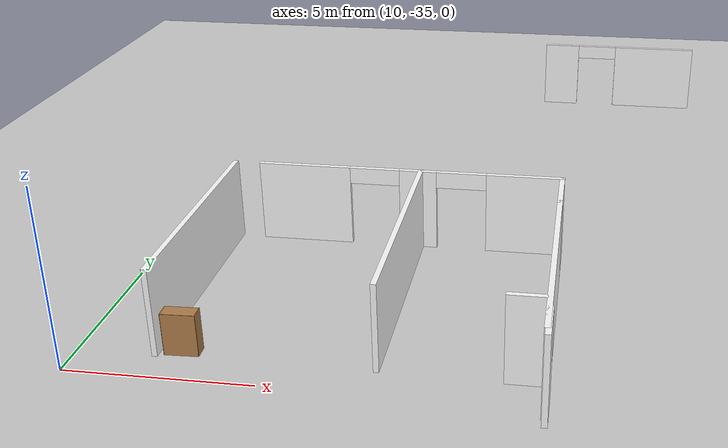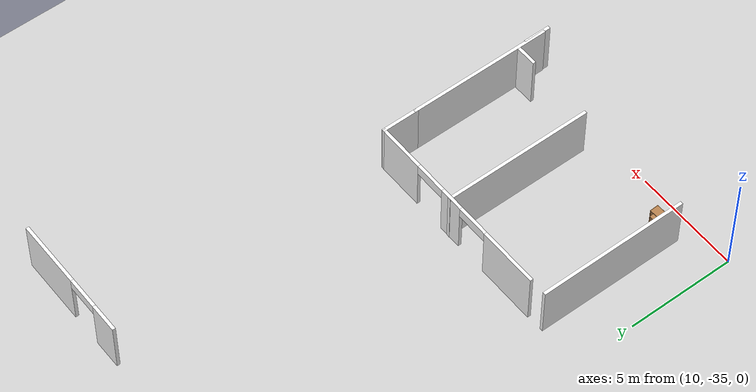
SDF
<sdf version="1.6">
 <world name="default">
  <model name="ground_plane">
   <static>1</static>
   <link name="link">
    <collision name="collision">
     <geometry><plane><normal>0 0 1</normal><size>100 100</size></plane></geometry>
     <surface><friction><ode><mu>100</mu><mu2>50</mu2></ode></friction></surface>
    </collision>
    <visual name="visual">
     <cast_shadows>0</cast_shadows>
     <geometry><plane><normal>0 0 1</normal><size>100 100</size></plane></geometry>
     <material>
      <script>
       <uri>model://office_env/materials/scripts</uri>
       <uri>model://office_env/materials/textures</uri>
       <name>wall</name>
      </script>
     </material>
    </visual>
   </link>
  </model>
  <model name="aule_N">
   <pose>0.1887 -1.4289 0 0 -0 0</pose>
   <link name="Wall_202">
    <pose>17.2908 -25.7162 0 0 -0 0</pose>
    <visual name="Wall_202_Visual_0">
     <pose>-3.22144 0 1.25 0 -0 0</pose>
     <geometry><box><size>2.80712 0.15 2.5</size></box></geometry>
     <material>
      <script>
       <uri>model://office_env/materials/scripts</uri>
       <uri>model://office_env/materials/textures</uri>
       <name>wall</name>
      </script>
      <ambient>1 1 1 1</ambient>
     </material>
    </visual>
    <collision name="Wall_202_Collision_0">
     <geometry><box><size>2.80712 0.15 2.5</size></box></geometry>
     <pose>-3.22144 0 1.25 0 -0 0</pose>
    </collision>
    <visual name="Wall_202_Visual_1">
     <pose>0.246922 0 1.25 0 -0 0</pose>
     <geometry><box><size>1.12961 0.15 2.5</size></box></geometry>
     <material>
      <script>
       <uri>model://office_env/materials/scripts</uri>
       <uri>model://office_env/materials/textures</uri>
       <name>wall</name>
      </script>
      <ambient>1 1 1 1</ambient>
     </material>
    </visual>
    <collision name="Wall_202_Collision_1">
     <geometry><box><size>1.12961 0.15 2.5</size></box></geometry>
     <pose>0.246922 0 1.25 0 -0 0</pose>
    </collision>
    <visual name="Wall_202_Visual_2">
     <pose>3.46836 0 1.25 0 -0 0</pose>
     <geometry><box><size>2.31327 0.15 2.5</size></box></geometry>
     <material>
      <script>
       <uri>model://office_env/materials/scripts</uri>
       <uri>model://office_env/materials/textures</uri>
       <name>wall</name>
      </script>
      <ambient>1 1 1 1</ambient>
     </material>
    </visual>
    <collision name="Wall_202_Collision_2">
     <geometry><box><size>2.31327 0.15 2.5</size></box></geometry>
     <pose>3.46836 0 1.25 0 -0 0</pose>
    </collision>
    <visual name="Wall_202_Visual_3">
     <pose>-1.06788 0 2.25 0 -0 0</pose>
     <geometry><box><size>1.5 0.15 0.5</size></box></geometry>
     <material>
      <script>
       <uri>model://office_env/materials/scripts</uri>
       <uri>model://office_env/materials/textures</uri>
       <name>wall</name>
      </script>
      <ambient>1 1 1 1</ambient>
     </material>
    </visual>
    <collision name="Wall_202_Collision_3">
     <geometry><box><size>1.5 0.15 0.5</size></box></geometry>
     <pose>-1.06788 0 2.25 0 -0 0</pose>
    </collision>
    <visual name="Wall_202_Visual_4">
     <pose>1.56173 0 2.25 0 -0 0</pose>
     <geometry><box><size>1.5 0.15 0.5</size></box></geometry>
     <material>
      <script>
       <uri>model://office_env/materials/scripts</uri>
       <uri>model://office_env/materials/textures</uri>
       <name>wall</name>
      </script>
      <ambient>1 1 1 1</ambient>
     </material>
    </visual>
    <collision name="Wall_202_Collision_4">
     <geometry><box><size>1.5 0.15 0.5</size></box></geometry>
     <pose>1.56173 0 2.25 0 -0 0</pose>
    </collision>
   </link>
   <link name="Wall_203">
    <collision name="Wall_203_Collision">
     <geometry><box><size>1.75 0.15 2.5</size></box></geometry>
     <pose>0 0 1.25 0 -0 0</pose>
    </collision>
    <visual name="Wall_203_Visual">
     <pose>0 0 1.25 0 -0 0</pose>
     <geometry><box><size>1.75 0.15 2.5</size></box></geometry>
     <material>
      <script>
       <uri>model://office_env/materials/scripts</uri>
       <uri>model://office_env/materials/textures</uri>
       <name>wall</name>
      </script>
      <ambient>1 1 1 1</ambient>
     </material>
    </visual>
    <pose>21.8408 -26.5162 0 0 0 -1.5708</pose>
   </link>
   <link name="Wall_209">
    <collision name="Wall_209_Collision">
     <geometry><box><size>6.75 0.15 2.5</size></box></geometry>
     <pose>0 0 1.25 0 -0 0</pose>
    </collision>
    <visual name="Wall_209_Visual">
     <pose>0 0 1.25 0 -0 0</pose>
     <geometry><box><size>6.75 0.15 2.5</size></box></geometry>
     <material>
      <script>
       <uri>model://office_env/materials/scripts</uri>
       <uri>model://office_env/materials/textures</uri>
       <name>wall</name>
      </script>
      <ambient>1 1 1 1</ambient>
     </material>
    </visual>
    <pose>21.8408 -30.6162 0 0 0 -1.5708</pose>
   </link>
   <link name="Wall_213">
    <collision name="Wall_213_Collision">
     <geometry><box><size>7 0.15 2.5</size></box></geometry>
     <pose>0 0 1.25 0 -0 0</pose>
    </collision>
    <visual name="Wall_213_Visual">
     <pose>0 0 1.25 0 -0 0</pose>
     <geometry><box><size>7 0.15 2.5</size></box></geometry>
     <material>
      <script>
       <uri>model://office_env/materials/scripts</uri>
       <uri>model://office_env/materials/textures</uri>
       <name>wall</name>
      </script>
      <ambient>1 1 1 1</ambient>
     </material>
    </visual>
    <pose>17.6159 -29.1253 0 0 0 -1.5708</pose>
   </link>
   <link name="Wall_217">
    <collision name="Wall_217_Collision">
     <geometry><box><size>7 0.15 2.5</size></box></geometry>
     <pose>0 0 1.25 0 -0 0</pose>
    </collision>
    <visual name="Wall_217_Visual">
     <pose>0 0 1.25 0 -0 0</pose>
     <geometry><box><size>7 0.15 2.5</size></box></geometry>
     <material>
      <script>
       <uri>model://office_env/materials/scripts</uri>
       <uri>model://office_env/materials/textures</uri>
       <name>wall</name>
      </script>
      <ambient>1 1 1 1</ambient>
     </material>
    </visual>
    <pose>11.8942 -29.1817 0 0 0 -1.5708</pose>
   </link>
   <link name="Wall_234">
    <collision name="Wall_234_Collision">
     <geometry><box><size>1.25 0.15 2.5</size></box></geometry>
     <pose>0 0 1.25 0 -0 0</pose>
    </collision>
    <visual name="Wall_234_Visual">
     <pose>0 0 1.25 0 -0 0</pose>
     <geometry><box><size>1.25 0.15 2.5</size></box></geometry>
     <material>
      <script>
       <uri>model://office_env/materials/scripts</uri>
       <uri>model://office_env/materials/textures</uri>
       <name>wall</name>
      </script>
      <ambient>1 1 1 1</ambient>
     </material>
    </visual>
    <pose>21.8703 -33.6506 0 0 -0 1.5708</pose>
   </link>
   <link name="Wall_236">
    <collision name="Wall_236_Collision">
     <geometry><box><size>1 0.15 2.5</size></box></geometry>
     <pose>0 0 1.25 0 -0 0</pose>
    </collision>
    <visual name="Wall_236_Visual">
     <pose>0 0 1.25 0 -0 0</pose>
     <geometry><box><size>1 0.15 2.5</size></box></geometry>
     <material>
      <script>
       <uri>model://office_env/materials/scripts</uri>
       <uri>model://office_env/materials/textures</uri>
       <name>wall</name>
      </script>
      <ambient>1 1 1 1</ambient>
     </material>
    </visual>
    <pose>21.2953 -32.6045 0 0 -0 0</pose>
   </link>
   <link name="Wall_81">
    <pose>23.6204 -11.8349 0 0 -0 3.13358</pose>
    <visual name="Wall_81_Visual_0">
     <pose>-1.42133 0 1.25 0 -0 0</pose>
     <geometry><box><size>3.111 0.15 2.5</size></box></geometry>
     <material>
      <script>
       <uri>model://office_env/materials/scripts</uri>
       <uri>model://office_env/materials/textures</uri>
       <name>wall</name>
      </script>
      <ambient>1 1 1 1</ambient>
     </material>
    </visual>
    <collision name="Wall_81_Collision_0">
     <geometry><box><size>3.111 0.15 2.5</size></box></geometry>
     <pose>-1.42133 0 1.25 0 -0 0</pose>
    </collision>
    <visual name="Wall_81_Visual_1">
     <pose>2.3055 0 1.25 0 -0 0</pose>
     <geometry><box><size>1.34266 0.15 2.5</size></box></geometry>
     <material>
      <script>
       <uri>model://office_env/materials/scripts</uri>
       <uri>model://office_env/materials/textures</uri>
       <name>wall</name>
      </script>
      <ambient>1 1 1 1</ambient>
     </material>
    </visual>
    <collision name="Wall_81_Collision_1">
     <geometry><box><size>1.34266 0.15 2.5</size></box></geometry>
     <pose>2.3055 0 1.25 0 -0 0</pose>
    </collision>
    <visual name="Wall_81_Visual_2">
     <pose>0.88417 0 2.25 0 -0 0</pose>
     <geometry><box><size>1.5 0.15 0.5</size></box></geometry>
     <material>
      <script>
       <uri>model://office_env/materials/scripts</uri>
       <uri>model://office_env/materials/textures</uri>
       <name>wall</name>
      </script>
      <ambient>1 1 1 1</ambient>
     </material>
    </visual>
    <collision name="Wall_81_Collision_2">
     <geometry><box><size>1.5 0.15 0.5</size></box></geometry>
     <pose>0.88417 0 2.25 0 -0 0</pose>
    </collision>
   </link>
   <static>1</static>
  </model>
  <model name="bookshelf_0">
   <static>1</static>
   <link name="link">
    <inertial><mass>1</mass></inertial>
    <collision name="back">
     <pose>0 0.005 0.6 0 -0 0</pose>
     <geometry><box><size>0.9 0.01 1.2</size></box></geometry>
    </collision>
    <visual name="visual1">
     <pose>0 0.005 0.6 0 -0 0</pose>
     <geometry><box><size>0.9 0.01 1.2</size></box></geometry>
     <material>
      <script><uri>file://media/materials/scripts/gazebo.material</uri><name>Gazebo/Wood</name></script>
     </material>
    </visual>
    <collision name="left_side">
     <pose>0.45 -0.195 0.6 0 -0 0</pose>
     <geometry><box><size>0.02 0.4 1.2</size></box></geometry>
    </collision>
    <visual name="visual2">
     <pose>0.45 -0.195 0.6 0 -0 0</pose>
     <geometry><box><size>0.02 0.4 1.2</size></box></geometry>
     <material>
      <script><uri>file://media/materials/scripts/gazebo.material</uri><name>Gazebo/Wood</name></script>
     </material>
    </visual>
    <collision name="right_side">
     <pose>-0.45 -0.195 0.6 0 -0 0</pose>
     <geometry><box><size>0.02 0.4 1.2</size></box></geometry>
    </collision>
    <visual name="visual3">
     <pose>-0.45 -0.195 0.6 0 -0 0</pose>
     <geometry><box><size>0.02 0.4 1.2</size></box></geometry>
     <material>
      <script><uri>file://media/materials/scripts/gazebo.material</uri><name>Gazebo/Wood</name></script>
     </material>
    </visual>
    <collision name="bottom">
     <pose>0 -0.195 0.03 0 -0 0</pose>
     <geometry><box><size>0.88 0.4 0.06</size></box></geometry>
    </collision>
    <visual name="visual4">
     <pose>0 -0.195 0.03 0 -0 0</pose>
     <geometry><box><size>0.88 0.4 0.06</size></box></geometry>
     <material>
      <script><uri>file://media/materials/scripts/gazebo.material</uri><name>Gazebo/Wood</name></script>
     </material>
    </visual>
    <collision name="top">
     <pose>0 -0.195 1.19 0 -0 0</pose>
     <geometry><box><size>0.88 0.4 0.02</size></box></geometry>
    </collision>
    <visual name="visual5">
     <pose>0 -0.195 1.19 0 -0 0</pose>
     <geometry><box><size>0.88 0.4 0.02</size></box></geometry>
     <material>
      <script><uri>file://media/materials/scripts/gazebo.material</uri><name>Gazebo/Wood</name></script>
     </material>
    </visual>
    <collision name="low_shelf">
     <pose>0 -0.195 0.43 0 -0 0</pose>
     <geometry><box><size>0.88 0.4 0.02</size></box></geometry>
    </collision>
    <visual name="visual6">
     <pose>0 -0.195 0.43 0 -0 0</pose>
     <geometry><box><size>0.88 0.4 0.02</size></box></geometry>
     <material>
      <script><uri>file://media/materials/scripts/gazebo.material</uri><name>Gazebo/Wood</name></script>
     </material>
    </visual>
    <collision name="high_shelf">
     <pose>0 -0.195 0.8 0 -0 0</pose>
     <geometry><box><size>0.88 0.4 0.02</size></box></geometry>
    </collision>
    <visual name="visual7">
     <pose>0 -0.195 0.8 0 -0 0</pose>
     <geometry><box><size>0.88 0.4 0.02</size></box></geometry>
     <material>
      <script><uri>file://media/materials/scripts/gazebo.material</uri><name>Gazebo/Wood</name></script>
     </material>
    </visual>
   </link>
   <pose>12.7495 -33.991 0 0 0 -3.1053</pose>
  </model>
 </world>
</sdf>
